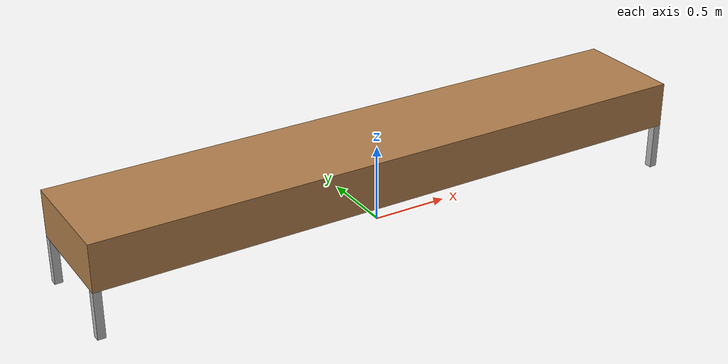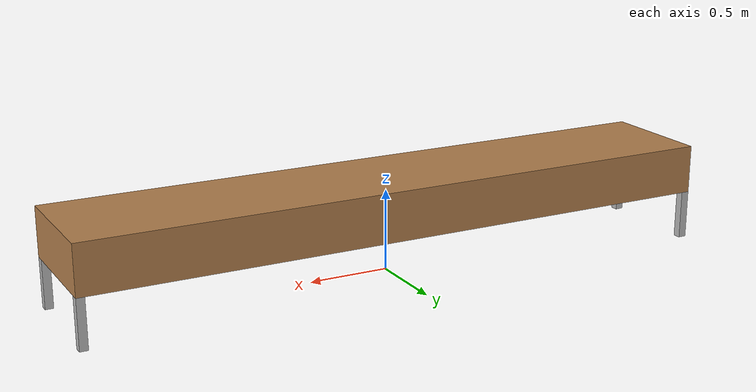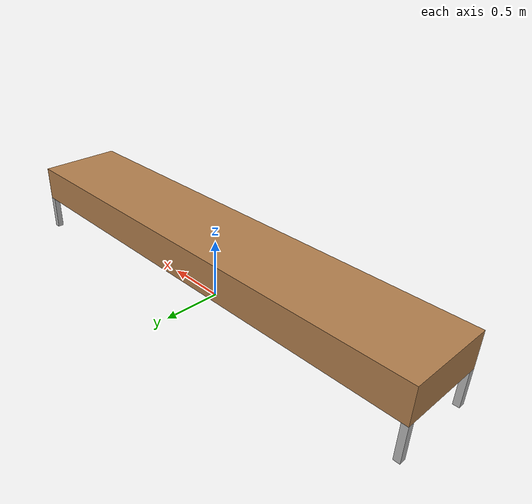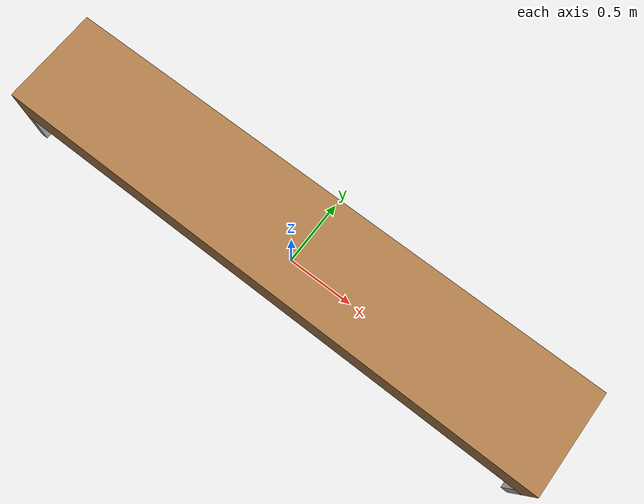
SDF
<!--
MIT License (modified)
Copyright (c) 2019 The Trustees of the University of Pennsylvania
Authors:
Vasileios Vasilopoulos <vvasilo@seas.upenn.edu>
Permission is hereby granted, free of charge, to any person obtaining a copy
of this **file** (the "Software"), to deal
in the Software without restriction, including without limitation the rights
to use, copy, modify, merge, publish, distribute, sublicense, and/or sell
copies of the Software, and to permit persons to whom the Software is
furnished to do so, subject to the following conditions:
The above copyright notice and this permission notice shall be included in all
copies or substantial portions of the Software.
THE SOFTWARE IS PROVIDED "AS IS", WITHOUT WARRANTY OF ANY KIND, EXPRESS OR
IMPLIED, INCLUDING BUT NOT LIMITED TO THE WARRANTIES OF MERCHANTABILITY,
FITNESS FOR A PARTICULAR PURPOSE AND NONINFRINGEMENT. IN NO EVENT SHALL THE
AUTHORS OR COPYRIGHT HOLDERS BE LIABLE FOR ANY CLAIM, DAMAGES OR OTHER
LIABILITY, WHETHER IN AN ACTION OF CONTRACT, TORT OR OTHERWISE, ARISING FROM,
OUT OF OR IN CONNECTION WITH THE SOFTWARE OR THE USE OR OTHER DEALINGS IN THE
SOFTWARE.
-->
<?xml version='1.0'?>

<sdf version='1.6'>
  <model name='table'>
    <link name='table_top'>
      <pose frame=''>0 0 0.45 0 0 0</pose> <!-- Raised z-coordinate -->
      <inertial>
        <mass>200</mass>
        <inertia>
          <ixx>4.78</ixx>
          <ixy>0</ixy>
          <ixz>0</ixz>
          <iyy>6.26</iyy>
          <iyz>0</iyz>
          <izz>8.235</izz>
        </inertia>
        <pose frame=''>0 0 0 0 0 0</pose>
      </inertial>
      <visual name='table_top_visual'>
        <pose frame=''>0 0 0 0 0 0</pose>
        <geometry>
          <box>
            <size>4 0.72 0.3</size>
          </box>
        </geometry>
        <material>
          <script>
            <uri>file://media/materials/scripts/gazebo.material</uri>
            <name>Gazebo/Wood</name>
          </script>
        </material>
        <cast_shadows>1</cast_shadows>
        <transparency>0</transparency>
      </visual>
      <collision name='table_top_collision'>
        <geometry>
          <box>
            <size>4 0.72 0.3</size>
          </box>
        </geometry>
      </collision>
    </link>

    <!-- Legs -->
    <link name='leg1'>
      <pose frame=''>1.975 0.335 0.15 0 0 0</pose>
      <visual name='leg1_visual'>
        <geometry>
          <box>
            <size>0.05 0.05 0.3</size>
          </box>
        </geometry>
      </visual>
      <collision name='leg1_collision'>
        <geometry>
          <box>
            <size>0.05 0.05 0.3</size>
          </box>
        </geometry>
      </collision>
    </link>
    <link name='leg2'>
      <pose frame=''>-1.975 0.335 0.15 0 0 0</pose>
      <visual name='leg2_visual'>
        <geometry>
          <box>
            <size>0.05 0.05 0.3</size>
          </box>
        </geometry>
      </visual>
      <collision name='leg2_collision'>
        <geometry>
          <box>
            <size>0.05 0.05 0.3</size>
          </box>
        </geometry>
      </collision>
    </link>
    <link name='leg3'>
      <pose frame=''>1.975 -0.335 0.15 0 0 0</pose>
      <visual name='leg3_visual'>
        <geometry>
          <box>
            <size>0.05 0.05 0.3</size>
          </box>
        </geometry>
      </visual>
      <collision name='leg3_collision'>
        <geometry>
          <box>
            <size>0.05 0.05 0.3</size>
          </box>
        </geometry>
      </collision>
    </link>
    <link name='leg4'>
      <pose frame=''>-1.975 -0.335 0.15 0 0 0</pose>
      <visual name='leg4_visual'>
        <geometry>
          <box>
            <size>0.05 0.05 0.3</size>
          </box>
        </geometry>
      </visual>
      <collision name='leg4_collision'>
        <geometry>
          <box>
            <size>0.05 0.05 0.3</size>
          </box>
        </geometry>
      </collision>
    </link>

    <!-- Joints to attach legs to the table top -->
    <joint name='joint_leg1' type='fixed'>
      <parent>table_top</parent>
      <child>leg1</child>
      <pose frame=''>1.95 0.335 0.3 0 0 0</pose> <!-- Adjusted x-coordinate to account for new table length -->
    </joint>
    <joint name='joint_leg2' type='fixed'>
      <parent>table_top</parent>
      <child>leg2</child>
      <pose frame=''>-1.95 0.335 0.3 0 0 0</pose> <!-- Adjusted x-coordinate to account for new table length -->
    </joint>
    <joint name='joint_leg3' type='fixed'>
      <parent>table_top</parent>
      <child>leg3</child>
      <pose frame=''>1.95 -0.335 0.3 0 0 0</pose> <!-- Adjusted x-coordinate to account for new table length -->
    </joint>
    <joint name='joint_leg4' type='fixed'>
      <parent>table_top</parent>
      <child>leg4</child>
      <pose frame=''>-1.95 -0.335 0.3 0 0 0</pose> <!-- Adjusted x-coordinate to account for new table length -->
    </joint>

    <static>0</static>
    <allow_auto_disable>1</allow_auto_disable>
  </model>
</sdf>
